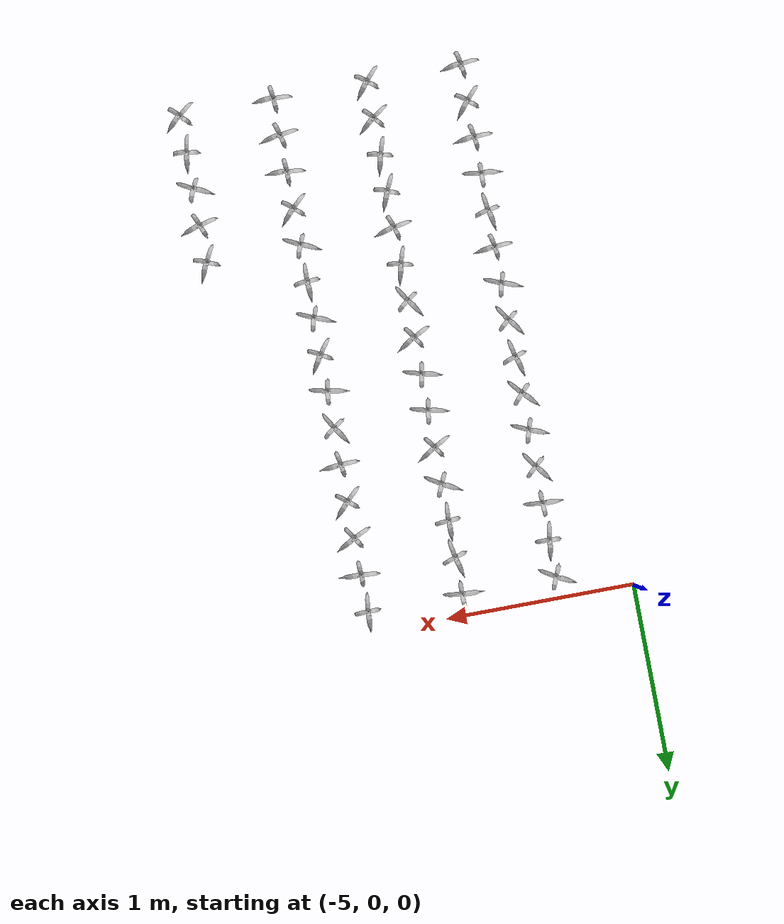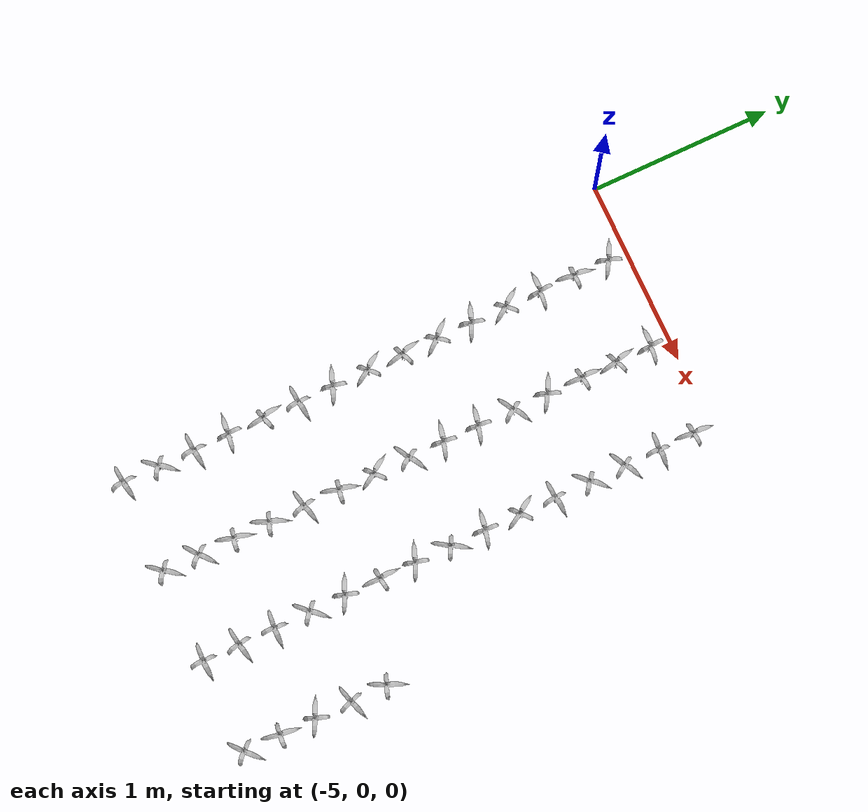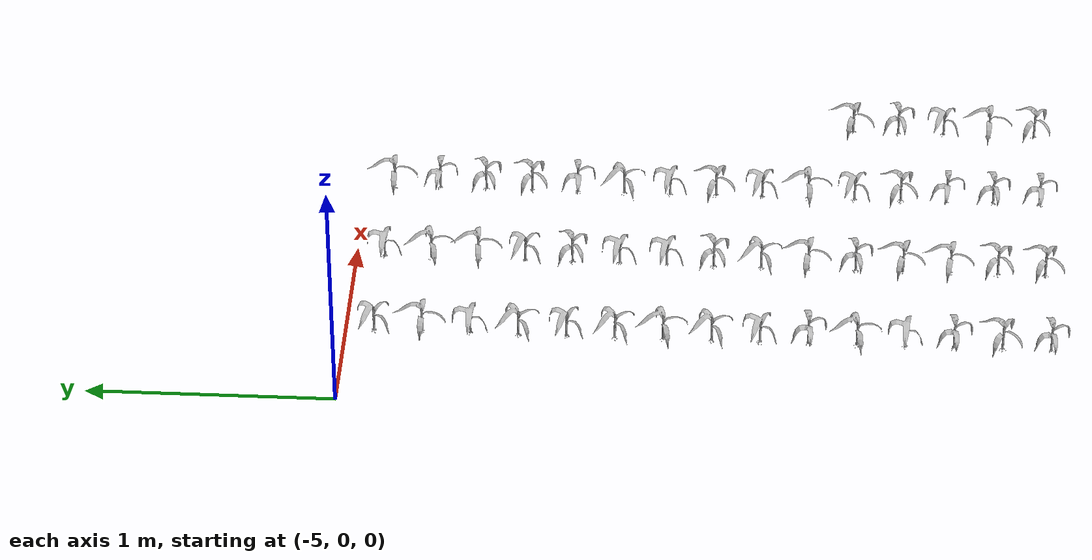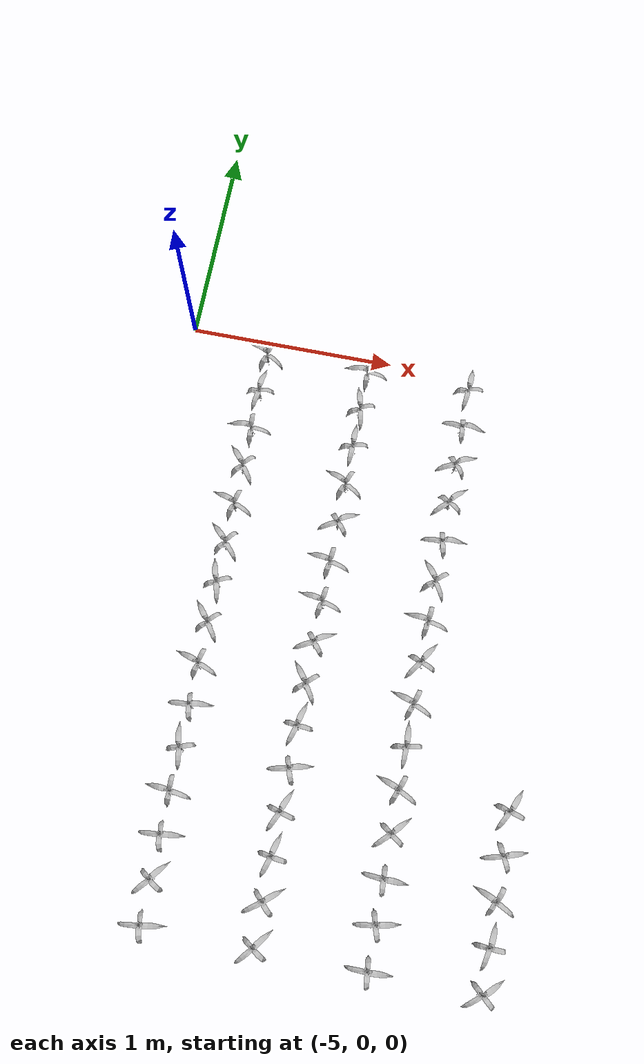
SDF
<sdf version="1.7">
 <world name="default">
  <model name="maize_-4.6_-2.8499999999999996">
   <static>1</static>
   <link name="link">
    <inertial>
     <mass>0.2</mass>
     <inertia>
      <ixx>0.166667</ixx>
      <ixy>0</ixy>
      <ixz>0</ixz>
      <iyy>0.166667</iyy>
      <iyz>0</iyz>
      <izz>0.166667</izz>
     </inertia>
    </inertial>
    <collision name="collision">
     <geometry><mesh><uri>model://corn_3/meshes/corn.dae</uri><scale>0.25 0.25 0.25</scale></mesh></geometry>
     <surface>
      <friction><ode><mu>0</mu><mu2>0</mu2></ode></friction>
      <contact><ode><kp>0</kp><kd>0</kd><max_vel>0</max_vel><min_depth>0.002</min_depth></ode></contact>
     </surface>
    </collision>
    <visual name="visual">
     <geometry><mesh><uri>model://corn_3/meshes/corn.dae</uri><scale>0.25 0.25 0.25</scale></mesh></geometry>
    </visual>
    <velocity_decay><linear>0</linear><angular>0</angular></velocity_decay>
   </link>
   <pose>-4.6 -2.85 0.05 0 -0 0.193534</pose>
  </model>
  <model name="maize_-4.6_-2.655">
   <static>1</static>
   <link name="link">
    <inertial>
     <mass>0.2</mass>
     <inertia>
      <ixx>0.166667</ixx>
      <ixy>0</ixy>
      <ixz>0</ixz>
      <iyy>0.166667</iyy>
      <iyz>0</iyz>
      <izz>0.166667</izz>
     </inertia>
    </inertial>
    <collision name="collision">
     <geometry><mesh><uri>model://corn_3/meshes/corn.dae</uri><scale>0.25 0.25 0.25</scale></mesh></geometry>
     <surface>
      <friction><ode><mu>0</mu><mu2>0</mu2></ode></friction>
      <contact><ode><kp>0</kp><kd>0</kd><max_vel>0</max_vel><min_depth>0.002</min_depth></ode></contact>
     </surface>
    </collision>
    <visual name="visual">
     <geometry><mesh><uri>model://corn_3/meshes/corn.dae</uri><scale>0.25 0.25 0.25</scale></mesh></geometry>
    </visual>
    <velocity_decay><linear>0</linear><angular>0</angular></velocity_decay>
   </link>
   <pose>-4.6 -2.655 0.05 0 -0 0.942737</pose>
  </model>
  <model name="maize_-4.6_-2.46">
   <static>1</static>
   <link name="link">
    <inertial>
     <mass>0.2</mass>
     <inertia>
      <ixx>0.166667</ixx>
      <ixy>0</ixy>
      <ixz>0</ixz>
      <iyy>0.166667</iyy>
      <iyz>0</iyz>
      <izz>0.166667</izz>
     </inertia>
    </inertial>
    <collision name="collision">
     <geometry><mesh><uri>model://corn_3/meshes/corn.dae</uri><scale>0.25 0.25 0.25</scale></mesh></geometry>
     <surface>
      <friction><ode><mu>0</mu><mu2>0</mu2></ode></friction>
      <contact><ode><kp>0</kp><kd>0</kd><max_vel>0</max_vel><min_depth>0.002</min_depth></ode></contact>
     </surface>
    </collision>
    <visual name="visual">
     <geometry><mesh><uri>model://corn_3/meshes/corn.dae</uri><scale>0.25 0.25 0.25</scale></mesh></geometry>
    </visual>
    <velocity_decay><linear>0</linear><angular>0</angular></velocity_decay>
   </link>
   <pose>-4.6 -2.46 0.05 0 -0 0.155841</pose>
  </model>
  <model name="maize_-4.6_-2.2649999999999997">
   <static>1</static>
   <link name="link">
    <inertial>
     <mass>0.2</mass>
     <inertia>
      <ixx>0.166667</ixx>
      <ixy>0</ixy>
      <ixz>0</ixz>
      <iyy>0.166667</iyy>
      <iyz>0</iyz>
      <izz>0.166667</izz>
     </inertia>
    </inertial>
    <collision name="collision">
     <geometry><mesh><uri>model://corn_3/meshes/corn.dae</uri><scale>0.25 0.25 0.25</scale></mesh></geometry>
     <surface>
      <friction><ode><mu>0</mu><mu2>0</mu2></ode></friction>
      <contact><ode><kp>0</kp><kd>0</kd><max_vel>0</max_vel><min_depth>0.002</min_depth></ode></contact>
     </surface>
    </collision>
    <visual name="visual">
     <geometry><mesh><uri>model://corn_3/meshes/corn.dae</uri><scale>0.25 0.25 0.25</scale></mesh></geometry>
    </visual>
    <velocity_decay><linear>0</linear><angular>0</angular></velocity_decay>
   </link>
   <pose>-4.6 -2.265 0.05 0 -0 3.0832</pose>
  </model>
  <model name="maize_-4.6_-2.07">
   <static>1</static>
   <link name="link">
    <inertial>
     <mass>0.2</mass>
     <inertia>
      <ixx>0.166667</ixx>
      <ixy>0</ixy>
      <ixz>0</ixz>
      <iyy>0.166667</iyy>
      <iyz>0</iyz>
      <izz>0.166667</izz>
     </inertia>
    </inertial>
    <collision name="collision">
     <geometry><mesh><uri>model://corn_3/meshes/corn.dae</uri><scale>0.25 0.25 0.25</scale></mesh></geometry>
     <surface>
      <friction><ode><mu>0</mu><mu2>0</mu2></ode></friction>
      <contact><ode><kp>0</kp><kd>0</kd><max_vel>0</max_vel><min_depth>0.002</min_depth></ode></contact>
     </surface>
    </collision>
    <visual name="visual">
     <geometry><mesh><uri>model://corn_3/meshes/corn.dae</uri><scale>0.25 0.25 0.25</scale></mesh></geometry>
    </visual>
    <velocity_decay><linear>0</linear><angular>0</angular></velocity_decay>
   </link>
   <pose>-4.6 -2.07 0.05 0 -0 1.80875</pose>
  </model>
  <model name="maize_-4.6_-1.8749999999999996">
   <static>1</static>
   <link name="link">
    <inertial>
     <mass>0.2</mass>
     <inertia>
      <ixx>0.166667</ixx>
      <ixy>0</ixy>
      <ixz>0</ixz>
      <iyy>0.166667</iyy>
      <iyz>0</iyz>
      <izz>0.166667</izz>
     </inertia>
    </inertial>
    <collision name="collision">
     <geometry><mesh><uri>model://corn_3/meshes/corn.dae</uri><scale>0.25 0.25 0.25</scale></mesh></geometry>
     <surface>
      <friction><ode><mu>0</mu><mu2>0</mu2></ode></friction>
      <contact><ode><kp>0</kp><kd>0</kd><max_vel>0</max_vel><min_depth>0.002</min_depth></ode></contact>
     </surface>
    </collision>
    <visual name="visual">
     <geometry><mesh><uri>model://corn_3/meshes/corn.dae</uri><scale>0.25 0.25 0.25</scale></mesh></geometry>
    </visual>
    <velocity_decay><linear>0</linear><angular>0</angular></velocity_decay>
   </link>
   <pose>-4.6 -1.875 0.05 0 -0 0.168491</pose>
  </model>
  <model name="maize_-4.6_-1.6799999999999997">
   <static>1</static>
   <link name="link">
    <inertial>
     <mass>0.2</mass>
     <inertia>
      <ixx>0.166667</ixx>
      <ixy>0</ixy>
      <ixz>0</ixz>
      <iyy>0.166667</iyy>
      <iyz>0</iyz>
      <izz>0.166667</izz>
     </inertia>
    </inertial>
    <collision name="collision">
     <geometry><mesh><uri>model://corn_3/meshes/corn.dae</uri><scale>0.25 0.25 0.25</scale></mesh></geometry>
     <surface>
      <friction><ode><mu>0</mu><mu2>0</mu2></ode></friction>
      <contact><ode><kp>0</kp><kd>0</kd><max_vel>0</max_vel><min_depth>0.002</min_depth></ode></contact>
     </surface>
    </collision>
    <visual name="visual">
     <geometry><mesh><uri>model://corn_3/meshes/corn.dae</uri><scale>0.25 0.25 0.25</scale></mesh></geometry>
    </visual>
    <velocity_decay><linear>0</linear><angular>0</angular></velocity_decay>
   </link>
   <pose>-4.6 -1.68 0.05 0 -0 2.83995</pose>
  </model>
  <model name="maize_-4.6_-1.4849999999999999">
   <static>1</static>
   <link name="link">
    <inertial>
     <mass>0.2</mass>
     <inertia>
      <ixx>0.166667</ixx>
      <ixy>0</ixy>
      <ixz>0</ixz>
      <iyy>0.166667</iyy>
      <iyz>0</iyz>
      <izz>0.166667</izz>
     </inertia>
    </inertial>
    <collision name="collision">
     <geometry><mesh><uri>model://corn_3/meshes/corn.dae</uri><scale>0.25 0.25 0.25</scale></mesh></geometry>
     <surface>
      <friction><ode><mu>0</mu><mu2>0</mu2></ode></friction>
      <contact><ode><kp>0</kp><kd>0</kd><max_vel>0</max_vel><min_depth>0.002</min_depth></ode></contact>
     </surface>
    </collision>
    <visual name="visual">
     <geometry><mesh><uri>model://corn_3/meshes/corn.dae</uri><scale>0.25 0.25 0.25</scale></mesh></geometry>
    </visual>
    <velocity_decay><linear>0</linear><angular>0</angular></velocity_decay>
   </link>
   <pose>-4.6 -1.485 0.05 0 -0 2.24824</pose>
  </model>
  <model name="maize_-4.6_-1.2899999999999996">
   <static>1</static>
   <link name="link">
    <inertial>
     <mass>0.2</mass>
     <inertia>
      <ixx>0.166667</ixx>
      <ixy>0</ixy>
      <ixz>0</ixz>
      <iyy>0.166667</iyy>
      <iyz>0</iyz>
      <izz>0.166667</izz>
     </inertia>
    </inertial>
    <collision name="collision">
     <geometry><mesh><uri>model://corn_3/meshes/corn.dae</uri><scale>0.25 0.25 0.25</scale></mesh></geometry>
     <surface>
      <friction><ode><mu>0</mu><mu2>0</mu2></ode></friction>
      <contact><ode><kp>0</kp><kd>0</kd><max_vel>0</max_vel><min_depth>0.002</min_depth></ode></contact>
     </surface>
    </collision>
    <visual name="visual">
     <geometry><mesh><uri>model://corn_3/meshes/corn.dae</uri><scale>0.25 0.25 0.25</scale></mesh></geometry>
    </visual>
    <velocity_decay><linear>0</linear><angular>0</angular></velocity_decay>
   </link>
   <pose>-4.6 -1.29 0.05 0 -0 1.88643</pose>
  </model>
  <model name="maize_-4.6_-1.0949999999999998">
   <static>1</static>
   <link name="link">
    <inertial>
     <mass>0.2</mass>
     <inertia>
      <ixx>0.166667</ixx>
      <ixy>0</ixy>
      <ixz>0</ixz>
      <iyy>0.166667</iyy>
      <iyz>0</iyz>
      <izz>0.166667</izz>
     </inertia>
    </inertial>
    <collision name="collision">
     <geometry><mesh><uri>model://corn_3/meshes/corn.dae</uri><scale>0.25 0.25 0.25</scale></mesh></geometry>
     <surface>
      <friction><ode><mu>0</mu><mu2>0</mu2></ode></friction>
      <contact><ode><kp>0</kp><kd>0</kd><max_vel>0</max_vel><min_depth>0.002</min_depth></ode></contact>
     </surface>
    </collision>
    <visual name="visual">
     <geometry><mesh><uri>model://corn_3/meshes/corn.dae</uri><scale>0.25 0.25 0.25</scale></mesh></geometry>
    </visual>
    <velocity_decay><linear>0</linear><angular>0</angular></velocity_decay>
   </link>
   <pose>-4.6 -1.095 0.05 0 -0 2.37285</pose>
  </model>
  <model name="maize_-4.6_-0.8999999999999995">
   <static>1</static>
   <link name="link">
    <inertial>
     <mass>0.2</mass>
     <inertia>
      <ixx>0.166667</ixx>
      <ixy>0</ixy>
      <ixz>0</ixz>
      <iyy>0.166667</iyy>
      <iyz>0</iyz>
      <izz>0.166667</izz>
     </inertia>
    </inertial>
    <collision name="collision">
     <geometry><mesh><uri>model://corn_3/meshes/corn.dae</uri><scale>0.25 0.25 0.25</scale></mesh></geometry>
     <surface>
      <friction><ode><mu>0</mu><mu2>0</mu2></ode></friction>
      <contact><ode><kp>0</kp><kd>0</kd><max_vel>0</max_vel><min_depth>0.002</min_depth></ode></contact>
     </surface>
    </collision>
    <visual name="visual">
     <geometry><mesh><uri>model://corn_3/meshes/corn.dae</uri><scale>0.25 0.25 0.25</scale></mesh></geometry>
    </visual>
    <velocity_decay><linear>0</linear><angular>0</angular></velocity_decay>
   </link>
   <pose>-4.6 -0.9 0.05 0 -0 2.8089</pose>
  </model>
  <model name="maize_-4.6_-0.7050000000000001">
   <static>1</static>
   <link name="link">
    <inertial>
     <mass>0.2</mass>
     <inertia>
      <ixx>0.166667</ixx>
      <ixy>0</ixy>
      <ixz>0</ixz>
      <iyy>0.166667</iyy>
      <iyz>0</iyz>
      <izz>0.166667</izz>
     </inertia>
    </inertial>
    <collision name="collision">
     <geometry><mesh><uri>model://corn_3/meshes/corn.dae</uri><scale>0.25 0.25 0.25</scale></mesh></geometry>
     <surface>
      <friction><ode><mu>0</mu><mu2>0</mu2></ode></friction>
      <contact><ode><kp>0</kp><kd>0</kd><max_vel>0</max_vel><min_depth>0.002</min_depth></ode></contact>
     </surface>
    </collision>
    <visual name="visual">
     <geometry><mesh><uri>model://corn_3/meshes/corn.dae</uri><scale>0.25 0.25 0.25</scale></mesh></geometry>
    </visual>
    <velocity_decay><linear>0</linear><angular>0</angular></velocity_decay>
   </link>
   <pose>-4.6 -0.705 0.05 0 -0 2.27748</pose>
  </model>
  <model name="maize_-4.6_-0.5099999999999998">
   <static>1</static>
   <link name="link">
    <inertial>
     <mass>0.2</mass>
     <inertia>
      <ixx>0.166667</ixx>
      <ixy>0</ixy>
      <ixz>0</ixz>
      <iyy>0.166667</iyy>
      <iyz>0</iyz>
      <izz>0.166667</izz>
     </inertia>
    </inertial>
    <collision name="collision">
     <geometry><mesh><uri>model://corn_3/meshes/corn.dae</uri><scale>0.25 0.25 0.25</scale></mesh></geometry>
     <surface>
      <friction><ode><mu>0</mu><mu2>0</mu2></ode></friction>
      <contact><ode><kp>0</kp><kd>0</kd><max_vel>0</max_vel><min_depth>0.002</min_depth></ode></contact>
     </surface>
    </collision>
    <visual name="visual">
     <geometry><mesh><uri>model://corn_3/meshes/corn.dae</uri><scale>0.25 0.25 0.25</scale></mesh></geometry>
    </visual>
    <velocity_decay><linear>0</linear><angular>0</angular></velocity_decay>
   </link>
   <pose>-4.6 -0.51 0.05 0 -0 3.13945</pose>
  </model>
  <model name="maize_-4.6_-0.3149999999999995">
   <static>1</static>
   <link name="link">
    <inertial>
     <mass>0.2</mass>
     <inertia>
      <ixx>0.166667</ixx>
      <ixy>0</ixy>
      <ixz>0</ixz>
      <iyy>0.166667</iyy>
      <iyz>0</iyz>
      <izz>0.166667</izz>
     </inertia>
    </inertial>
    <collision name="collision">
     <geometry><mesh><uri>model://corn_3/meshes/corn.dae</uri><scale>0.25 0.25 0.25</scale></mesh></geometry>
     <surface>
      <friction><ode><mu>0</mu><mu2>0</mu2></ode></friction>
      <contact><ode><kp>0</kp><kd>0</kd><max_vel>0</max_vel><min_depth>0.002</min_depth></ode></contact>
     </surface>
    </collision>
    <visual name="visual">
     <geometry><mesh><uri>model://corn_3/meshes/corn.dae</uri><scale>0.25 0.25 0.25</scale></mesh></geometry>
    </visual>
    <velocity_decay><linear>0</linear><angular>0</angular></velocity_decay>
   </link>
   <pose>-4.6 -0.315 0.05 0 -0 1.49172</pose>
  </model>
  <model name="maize_-4.6_-0.1200000000000001">
   <static>1</static>
   <link name="link">
    <inertial>
     <mass>0.2</mass>
     <inertia>
      <ixx>0.166667</ixx>
      <ixy>0</ixy>
      <ixz>0</ixz>
      <iyy>0.166667</iyy>
      <iyz>0</iyz>
      <izz>0.166667</izz>
     </inertia>
    </inertial>
    <collision name="collision">
     <geometry><mesh><uri>model://corn_3/meshes/corn.dae</uri><scale>0.25 0.25 0.25</scale></mesh></geometry>
     <surface>
      <friction><ode><mu>0</mu><mu2>0</mu2></ode></friction>
      <contact><ode><kp>0</kp><kd>0</kd><max_vel>0</max_vel><min_depth>0.002</min_depth></ode></contact>
     </surface>
    </collision>
    <visual name="visual">
     <geometry><mesh><uri>model://corn_3/meshes/corn.dae</uri><scale>0.25 0.25 0.25</scale></mesh></geometry>
    </visual>
    <velocity_decay><linear>0</linear><angular>0</angular></velocity_decay>
   </link>
   <pose>-4.6 -0.12 0.05 0 -0 2.70126</pose>
  </model>
  <model name="maize_-4.100375_-2.8499999999999996">
   <static>1</static>
   <link name="link">
    <inertial>
     <mass>0.2</mass>
     <inertia>
      <ixx>0.166667</ixx>
      <ixy>0</ixy>
      <ixz>0</ixz>
      <iyy>0.166667</iyy>
      <iyz>0</iyz>
      <izz>0.166667</izz>
     </inertia>
    </inertial>
    <collision name="collision">
     <geometry><mesh><uri>model://corn_3/meshes/corn.dae</uri><scale>0.25 0.25 0.25</scale></mesh></geometry>
     <surface>
      <friction><ode><mu>0</mu><mu2>0</mu2></ode></friction>
      <contact><ode><kp>0</kp><kd>0</kd><max_vel>0</max_vel><min_depth>0.002</min_depth></ode></contact>
     </surface>
    </collision>
    <visual name="visual">
     <geometry><mesh><uri>model://corn_3/meshes/corn.dae</uri><scale>0.25 0.25 0.25</scale></mesh></geometry>
    </visual>
    <velocity_decay><linear>0</linear><angular>0</angular></velocity_decay>
   </link>
   <pose>-4.10037 -2.85 0.05 0 -0 0.954288</pose>
  </model>
  <model name="maize_-4.100375_-2.655">
   <static>1</static>
   <link name="link">
    <inertial>
     <mass>0.2</mass>
     <inertia>
      <ixx>0.166667</ixx>
      <ixy>0</ixy>
      <ixz>0</ixz>
      <iyy>0.166667</iyy>
      <iyz>0</iyz>
      <izz>0.166667</izz>
     </inertia>
    </inertial>
    <collision name="collision">
     <geometry><mesh><uri>model://corn_3/meshes/corn.dae</uri><scale>0.25 0.25 0.25</scale></mesh></geometry>
     <surface>
      <friction><ode><mu>0</mu><mu2>0</mu2></ode></friction>
      <contact><ode><kp>0</kp><kd>0</kd><max_vel>0</max_vel><min_depth>0.002</min_depth></ode></contact>
     </surface>
    </collision>
    <visual name="visual">
     <geometry><mesh><uri>model://corn_3/meshes/corn.dae</uri><scale>0.25 0.25 0.25</scale></mesh></geometry>
    </visual>
    <velocity_decay><linear>0</linear><angular>0</angular></velocity_decay>
   </link>
   <pose>-4.10037 -2.655 0.05 0 -0 0.736353</pose>
  </model>
  <model name="maize_-4.100375_-2.46">
   <static>1</static>
   <link name="link">
    <inertial>
     <mass>0.2</mass>
     <inertia>
      <ixx>0.166667</ixx>
      <ixy>0</ixy>
      <ixz>0</ixz>
      <iyy>0.166667</iyy>
      <iyz>0</iyz>
      <izz>0.166667</izz>
     </inertia>
    </inertial>
    <collision name="collision">
     <geometry><mesh><uri>model://corn_3/meshes/corn.dae</uri><scale>0.25 0.25 0.25</scale></mesh></geometry>
     <surface>
      <friction><ode><mu>0</mu><mu2>0</mu2></ode></friction>
      <contact><ode><kp>0</kp><kd>0</kd><max_vel>0</max_vel><min_depth>0.002</min_depth></ode></contact>
     </surface>
    </collision>
    <visual name="visual">
     <geometry><mesh><uri>model://corn_3/meshes/corn.dae</uri><scale>0.25 0.25 0.25</scale></mesh></geometry>
    </visual>
    <velocity_decay><linear>0</linear><angular>0</angular></velocity_decay>
   </link>
   <pose>-4.10037 -2.46 0.05 0 -0 1.36753</pose>
  </model>
  <model name="maize_-4.100375_-2.2649999999999997">
   <static>1</static>
   <link name="link">
    <inertial>
     <mass>0.2</mass>
     <inertia>
      <ixx>0.166667</ixx>
      <ixy>0</ixy>
      <ixz>0</ixz>
      <iyy>0.166667</iyy>
      <iyz>0</iyz>
      <izz>0.166667</izz>
     </inertia>
    </inertial>
    <collision name="collision">
     <geometry><mesh><uri>model://corn_3/meshes/corn.dae</uri><scale>0.25 0.25 0.25</scale></mesh></geometry>
     <surface>
      <friction><ode><mu>0</mu><mu2>0</mu2></ode></friction>
      <contact><ode><kp>0</kp><kd>0</kd><max_vel>0</max_vel><min_depth>0.002</min_depth></ode></contact>
     </surface>
    </collision>
    <visual name="visual">
     <geometry><mesh><uri>model://corn_3/meshes/corn.dae</uri><scale>0.25 0.25 0.25</scale></mesh></geometry>
    </visual>
    <velocity_decay><linear>0</linear><angular>0</angular></velocity_decay>
   </link>
   <pose>-4.10037 -2.265 0.05 0 -0 1.23941</pose>
  </model>
  <model name="maize_-4.100375_-2.07">
   <static>1</static>
   <link name="link">
    <inertial>
     <mass>0.2</mass>
     <inertia>
      <ixx>0.166667</ixx>
      <ixy>0</ixy>
      <ixz>0</ixz>
      <iyy>0.166667</iyy>
      <iyz>0</iyz>
      <izz>0.166667</izz>
     </inertia>
    </inertial>
    <collision name="collision">
     <geometry><mesh><uri>model://corn_3/meshes/corn.dae</uri><scale>0.25 0.25 0.25</scale></mesh></geometry>
     <surface>
      <friction><ode><mu>0</mu><mu2>0</mu2></ode></friction>
      <contact><ode><kp>0</kp><kd>0</kd><max_vel>0</max_vel><min_depth>0.002</min_depth></ode></contact>
     </surface>
    </collision>
    <visual name="visual">
     <geometry><mesh><uri>model://corn_3/meshes/corn.dae</uri><scale>0.25 0.25 0.25</scale></mesh></geometry>
    </visual>
    <velocity_decay><linear>0</linear><angular>0</angular></velocity_decay>
   </link>
   <pose>-4.10037 -2.07 0.05 0 -0 0.298364</pose>
  </model>
  <model name="maize_-4.100375_-1.8749999999999996">
   <static>1</static>
   <link name="link">
    <inertial>
     <mass>0.2</mass>
     <inertia>
      <ixx>0.166667</ixx>
      <ixy>0</ixy>
      <ixz>0</ixz>
      <iyy>0.166667</iyy>
      <iyz>0</iyz>
      <izz>0.166667</izz>
     </inertia>
    </inertial>
    <collision name="collision">
     <geometry><mesh><uri>model://corn_3/meshes/corn.dae</uri><scale>0.25 0.25 0.25</scale></mesh></geometry>
     <surface>
      <friction><ode><mu>0</mu><mu2>0</mu2></ode></friction>
      <contact><ode><kp>0</kp><kd>0</kd><max_vel>0</max_vel><min_depth>0.002</min_depth></ode></contact>
     </surface>
    </collision>
    <visual name="visual">
     <geometry><mesh><uri>model://corn_3/meshes/corn.dae</uri><scale>0.25 0.25 0.25</scale></mesh></geometry>
    </visual>
    <velocity_decay><linear>0</linear><angular>0</angular></velocity_decay>
   </link>
   <pose>-4.10037 -1.875 0.05 0 -0 1.37113</pose>
  </model>
  <model name="maize_-4.100375_-1.6799999999999997">
   <static>1</static>
   <link name="link">
    <inertial>
     <mass>0.2</mass>
     <inertia>
      <ixx>0.166667</ixx>
      <ixy>0</ixy>
      <ixz>0</ixz>
      <iyy>0.166667</iyy>
      <iyz>0</iyz>
      <izz>0.166667</izz>
     </inertia>
    </inertial>
    <collision name="collision">
     <geometry><mesh><uri>model://corn_3/meshes/corn.dae</uri><scale>0.25 0.25 0.25</scale></mesh></geometry>
     <surface>
      <friction><ode><mu>0</mu><mu2>0</mu2></ode></friction>
      <contact><ode><kp>0</kp><kd>0</kd><max_vel>0</max_vel><min_depth>0.002</min_depth></ode></contact>
     </surface>
    </collision>
    <visual name="visual">
     <geometry><mesh><uri>model://corn_3/meshes/corn.dae</uri><scale>0.25 0.25 0.25</scale></mesh></geometry>
    </visual>
    <velocity_decay><linear>0</linear><angular>0</angular></velocity_decay>
   </link>
   <pose>-4.10037 -1.68 0.05 0 -0 2.2196</pose>
  </model>
  <model name="maize_-4.100375_-1.4849999999999999">
   <static>1</static>
   <link name="link">
    <inertial>
     <mass>0.2</mass>
     <inertia>
      <ixx>0.166667</ixx>
      <ixy>0</ixy>
      <ixz>0</ixz>
      <iyy>0.166667</iyy>
      <iyz>0</iyz>
      <izz>0.166667</izz>
     </inertia>
    </inertial>
    <collision name="collision">
     <geometry><mesh><uri>model://corn_3/meshes/corn.dae</uri><scale>0.25 0.25 0.25</scale></mesh></geometry>
     <surface>
      <friction><ode><mu>0</mu><mu2>0</mu2></ode></friction>
      <contact><ode><kp>0</kp><kd>0</kd><max_vel>0</max_vel><min_depth>0.002</min_depth></ode></contact>
     </surface>
    </collision>
    <visual name="visual">
     <geometry><mesh><uri>model://corn_3/meshes/corn.dae</uri><scale>0.25 0.25 0.25</scale></mesh></geometry>
    </visual>
    <velocity_decay><linear>0</linear><angular>0</angular></velocity_decay>
   </link>
   <pose>-4.10037 -1.485 0.05 0 -0 0.584728</pose>
  </model>
  <model name="maize_-4.100375_-1.2899999999999996">
   <static>1</static>
   <link name="link">
    <inertial>
     <mass>0.2</mass>
     <inertia>
      <ixx>0.166667</ixx>
      <ixy>0</ixy>
      <ixz>0</ixz>
      <iyy>0.166667</iyy>
      <iyz>0</iyz>
      <izz>0.166667</izz>
     </inertia>
    </inertial>
    <collision name="collision">
     <geometry><mesh><uri>model://corn_3/meshes/corn.dae</uri><scale>0.25 0.25 0.25</scale></mesh></geometry>
     <surface>
      <friction><ode><mu>0</mu><mu2>0</mu2></ode></friction>
      <contact><ode><kp>0</kp><kd>0</kd><max_vel>0</max_vel><min_depth>0.002</min_depth></ode></contact>
     </surface>
    </collision>
    <visual name="visual">
     <geometry><mesh><uri>model://corn_3/meshes/corn.dae</uri><scale>0.25 0.25 0.25</scale></mesh></geometry>
    </visual>
    <velocity_decay><linear>0</linear><angular>0</angular></velocity_decay>
   </link>
   <pose>-4.10037 -1.29 0.05 0 -0 2.942</pose>
  </model>
  <model name="maize_-4.100375_-1.0949999999999998">
   <static>1</static>
   <link name="link">
    <inertial>
     <mass>0.2</mass>
     <inertia>
      <ixx>0.166667</ixx>
      <ixy>0</ixy>
      <ixz>0</ixz>
      <iyy>0.166667</iyy>
      <iyz>0</iyz>
      <izz>0.166667</izz>
     </inertia>
    </inertial>
    <collision name="collision">
     <geometry><mesh><uri>model://corn_3/meshes/corn.dae</uri><scale>0.25 0.25 0.25</scale></mesh></geometry>
     <surface>
      <friction><ode><mu>0</mu><mu2>0</mu2></ode></friction>
      <contact><ode><kp>0</kp><kd>0</kd><max_vel>0</max_vel><min_depth>0.002</min_depth></ode></contact>
     </surface>
    </collision>
    <visual name="visual">
     <geometry><mesh><uri>model://corn_3/meshes/corn.dae</uri><scale>0.25 0.25 0.25</scale></mesh></geometry>
    </visual>
    <velocity_decay><linear>0</linear><angular>0</angular></velocity_decay>
   </link>
   <pose>-4.10037 -1.095 0.05 0 -0 2.96607</pose>
  </model>
  <model name="maize_-4.100375_-0.8999999999999995">
   <static>1</static>
   <link name="link">
    <inertial>
     <mass>0.2</mass>
     <inertia>
      <ixx>0.166667</ixx>
      <ixy>0</ixy>
      <ixz>0</ixz>
      <iyy>0.166667</iyy>
      <iyz>0</iyz>
      <izz>0.166667</izz>
     </inertia>
    </inertial>
    <collision name="collision">
     <geometry><mesh><uri>model://corn_3/meshes/corn.dae</uri><scale>0.25 0.25 0.25</scale></mesh></geometry>
     <surface>
      <friction><ode><mu>0</mu><mu2>0</mu2></ode></friction>
      <contact><ode><kp>0</kp><kd>0</kd><max_vel>0</max_vel><min_depth>0.002</min_depth></ode></contact>
     </surface>
    </collision>
    <visual name="visual">
     <geometry><mesh><uri>model://corn_3/meshes/corn.dae</uri><scale>0.25 0.25 0.25</scale></mesh></geometry>
    </visual>
    <velocity_decay><linear>0</linear><angular>0</angular></velocity_decay>
   </link>
   <pose>-4.10037 -0.9 0.05 0 -0 0.598537</pose>
  </model>
  <model name="maize_-4.100375_-0.7050000000000001">
   <static>1</static>
   <link name="link">
    <inertial>
     <mass>0.2</mass>
     <inertia>
      <ixx>0.166667</ixx>
      <ixy>0</ixy>
      <ixz>0</ixz>
      <iyy>0.166667</iyy>
      <iyz>0</iyz>
      <izz>0.166667</izz>
     </inertia>
    </inertial>
    <collision name="collision">
     <geometry><mesh><uri>model://corn_3/meshes/corn.dae</uri><scale>0.25 0.25 0.25</scale></mesh></geometry>
     <surface>
      <friction><ode><mu>0</mu><mu2>0</mu2></ode></friction>
      <contact><ode><kp>0</kp><kd>0</kd><max_vel>0</max_vel><min_depth>0.002</min_depth></ode></contact>
     </surface>
    </collision>
    <visual name="visual">
     <geometry><mesh><uri>model://corn_3/meshes/corn.dae</uri><scale>0.25 0.25 0.25</scale></mesh></geometry>
    </visual>
    <velocity_decay><linear>0</linear><angular>0</angular></velocity_decay>
   </link>
   <pose>-4.10037 -0.705 0.05 0 -0 2.6946</pose>
  </model>
  <model name="maize_-4.100375_-0.5099999999999998">
   <static>1</static>
   <link name="link">
    <inertial>
     <mass>0.2</mass>
     <inertia>
      <ixx>0.166667</ixx>
      <ixy>0</ixy>
      <ixz>0</ixz>
      <iyy>0.166667</iyy>
      <iyz>0</iyz>
      <izz>0.166667</izz>
     </inertia>
    </inertial>
    <collision name="collision">
     <geometry><mesh><uri>model://corn_3/meshes/corn.dae</uri><scale>0.25 0.25 0.25</scale></mesh></geometry>
     <surface>
      <friction><ode><mu>0</mu><mu2>0</mu2></ode></friction>
      <contact><ode><kp>0</kp><kd>0</kd><max_vel>0</max_vel><min_depth>0.002</min_depth></ode></contact>
     </surface>
    </collision>
    <visual name="visual">
     <geometry><mesh><uri>model://corn_3/meshes/corn.dae</uri><scale>0.25 0.25 0.25</scale></mesh></geometry>
    </visual>
    <velocity_decay><linear>0</linear><angular>0</angular></velocity_decay>
   </link>
   <pose>-4.10037 -0.51 0.05 0 -0 1.61655</pose>
  </model>
  <model name="maize_-4.100375_-0.3149999999999995">
   <static>1</static>
   <link name="link">
    <inertial>
     <mass>0.2</mass>
     <inertia>
      <ixx>0.166667</ixx>
      <ixy>0</ixy>
      <ixz>0</ixz>
      <iyy>0.166667</iyy>
      <iyz>0</iyz>
      <izz>0.166667</izz>
     </inertia>
    </inertial>
    <collision name="collision">
     <geometry><mesh><uri>model://corn_3/meshes/corn.dae</uri><scale>0.25 0.25 0.25</scale></mesh></geometry>
     <surface>
      <friction><ode><mu>0</mu><mu2>0</mu2></ode></friction>
      <contact><ode><kp>0</kp><kd>0</kd><max_vel>0</max_vel><min_depth>0.002</min_depth></ode></contact>
     </surface>
    </collision>
    <visual name="visual">
     <geometry><mesh><uri>model://corn_3/meshes/corn.dae</uri><scale>0.25 0.25 0.25</scale></mesh></geometry>
    </visual>
    <velocity_decay><linear>0</linear><angular>0</angular></velocity_decay>
   </link>
   <pose>-4.10037 -0.315 0.05 0 -0 1.85257</pose>
  </model>
  <model name="maize_-4.100375_-0.1200000000000001">
   <static>1</static>
   <link name="link">
    <inertial>
     <mass>0.2</mass>
     <inertia>
      <ixx>0.166667</ixx>
      <ixy>0</ixy>
      <ixz>0</ixz>
      <iyy>0.166667</iyy>
      <iyz>0</iyz>
      <izz>0.166667</izz>
     </inertia>
    </inertial>
    <collision name="collision">
     <geometry><mesh><uri>model://corn_3/meshes/corn.dae</uri><scale>0.25 0.25 0.25</scale></mesh></geometry>
     <surface>
      <friction><ode><mu>0</mu><mu2>0</mu2></ode></friction>
      <contact><ode><kp>0</kp><kd>0</kd><max_vel>0</max_vel><min_depth>0.002</min_depth></ode></contact>
     </surface>
    </collision>
    <visual name="visual">
     <geometry><mesh><uri>model://corn_3/meshes/corn.dae</uri><scale>0.25 0.25 0.25</scale></mesh></geometry>
    </visual>
    <velocity_decay><linear>0</linear><angular>0</angular></velocity_decay>
   </link>
   <pose>-4.10037 -0.12 0.05 0 -0 3.11664</pose>
  </model>
  <model name="maize_-3.6014994375_-2.8499999999999996">
   <static>1</static>
   <link name="link">
    <inertial>
     <mass>0.2</mass>
     <inertia>
      <ixx>0.166667</ixx>
      <ixy>0</ixy>
      <ixz>0</ixz>
      <iyy>0.166667</iyy>
      <iyz>0</iyz>
      <izz>0.166667</izz>
     </inertia>
    </inertial>
    <collision name="collision">
     <geometry><mesh><uri>model://corn_3/meshes/corn.dae</uri><scale>0.25 0.25 0.25</scale></mesh></geometry>
     <surface>
      <friction><ode><mu>0</mu><mu2>0</mu2></ode></friction>
      <contact><ode><kp>0</kp><kd>0</kd><max_vel>0</max_vel><min_depth>0.002</min_depth></ode></contact>
     </surface>
    </collision>
    <visual name="visual">
     <geometry><mesh><uri>model://corn_3/meshes/corn.dae</uri><scale>0.25 0.25 0.25</scale></mesh></geometry>
    </visual>
    <velocity_decay><linear>0</linear><angular>0</angular></velocity_decay>
   </link>
   <pose>-3.6015 -2.85 0.05 0 -0 0.067168</pose>
  </model>
  <model name="maize_-3.6014994375_-2.655">
   <static>1</static>
   <link name="link">
    <inertial>
     <mass>0.2</mass>
     <inertia>
      <ixx>0.166667</ixx>
      <ixy>0</ixy>
      <ixz>0</ixz>
      <iyy>0.166667</iyy>
      <iyz>0</iyz>
      <izz>0.166667</izz>
     </inertia>
    </inertial>
    <collision name="collision">
     <geometry><mesh><uri>model://corn_3/meshes/corn.dae</uri><scale>0.25 0.25 0.25</scale></mesh></geometry>
     <surface>
      <friction><ode><mu>0</mu><mu2>0</mu2></ode></friction>
      <contact><ode><kp>0</kp><kd>0</kd><max_vel>0</max_vel><min_depth>0.002</min_depth></ode></contact>
     </surface>
    </collision>
    <visual name="visual">
     <geometry><mesh><uri>model://corn_3/meshes/corn.dae</uri><scale>0.25 0.25 0.25</scale></mesh></geometry>
    </visual>
    <velocity_decay><linear>0</linear><angular>0</angular></velocity_decay>
   </link>
   <pose>-3.6015 -2.655 0.05 0 -0 0.243294</pose>
  </model>
  <model name="maize_-3.6014994375_-2.46">
   <static>1</static>
   <link name="link">
    <inertial>
     <mass>0.2</mass>
     <inertia>
      <ixx>0.166667</ixx>
      <ixy>0</ixy>
      <ixz>0</ixz>
      <iyy>0.166667</iyy>
      <iyz>0</iyz>
      <izz>0.166667</izz>
     </inertia>
    </inertial>
    <collision name="collision">
     <geometry><mesh><uri>model://corn_3/meshes/corn.dae</uri><scale>0.25 0.25 0.25</scale></mesh></geometry>
     <surface>
      <friction><ode><mu>0</mu><mu2>0</mu2></ode></friction>
      <contact><ode><kp>0</kp><kd>0</kd><max_vel>0</max_vel><min_depth>0.002</min_depth></ode></contact>
     </surface>
    </collision>
    <visual name="visual">
     <geometry><mesh><uri>model://corn_3/meshes/corn.dae</uri><scale>0.25 0.25 0.25</scale></mesh></geometry>
    </visual>
    <velocity_decay><linear>0</linear><angular>0</angular></velocity_decay>
   </link>
   <pose>-3.6015 -2.46 0.05 0 -0 0.00527</pose>
  </model>
  <model name="maize_-3.6014994375_-2.2649999999999997">
   <static>1</static>
   <link name="link">
    <inertial>
     <mass>0.2</mass>
     <inertia>
      <ixx>0.166667</ixx>
      <ixy>0</ixy>
      <ixz>0</ixz>
      <iyy>0.166667</iyy>
      <iyz>0</iyz>
      <izz>0.166667</izz>
     </inertia>
    </inertial>
    <collision name="collision">
     <geometry><mesh><uri>model://corn_3/meshes/corn.dae</uri><scale>0.25 0.25 0.25</scale></mesh></geometry>
     <surface>
      <friction><ode><mu>0</mu><mu2>0</mu2></ode></friction>
      <contact><ode><kp>0</kp><kd>0</kd><max_vel>0</max_vel><min_depth>0.002</min_depth></ode></contact>
     </surface>
    </collision>
    <visual name="visual">
     <geometry><mesh><uri>model://corn_3/meshes/corn.dae</uri><scale>0.25 0.25 0.25</scale></mesh></geometry>
    </visual>
    <velocity_decay><linear>0</linear><angular>0</angular></velocity_decay>
   </link>
   <pose>-3.6015 -2.265 0.05 0 -0 0.869077</pose>
  </model>
  <model name="maize_-3.6014994375_-2.07">
   <static>1</static>
   <link name="link">
    <inertial>
     <mass>0.2</mass>
     <inertia>
      <ixx>0.166667</ixx>
      <ixy>0</ixy>
      <ixz>0</ixz>
      <iyy>0.166667</iyy>
      <iyz>0</iyz>
      <izz>0.166667</izz>
     </inertia>
    </inertial>
    <collision name="collision">
     <geometry><mesh><uri>model://corn_3/meshes/corn.dae</uri><scale>0.25 0.25 0.25</scale></mesh></geometry>
     <surface>
      <friction><ode><mu>0</mu><mu2>0</mu2></ode></friction>
      <contact><ode><kp>0</kp><kd>0</kd><max_vel>0</max_vel><min_depth>0.002</min_depth></ode></contact>
     </surface>
    </collision>
    <visual name="visual">
     <geometry><mesh><uri>model://corn_3/meshes/corn.dae</uri><scale>0.25 0.25 0.25</scale></mesh></geometry>
    </visual>
    <velocity_decay><linear>0</linear><angular>0</angular></velocity_decay>
   </link>
   <pose>-3.6015 -2.07 0.05 0 -0 2.76595</pose>
  </model>
  <model name="maize_-3.6014994375_-1.8749999999999996">
   <static>1</static>
   <link name="link">
    <inertial>
     <mass>0.2</mass>
     <inertia>
      <ixx>0.166667</ixx>
      <ixy>0</ixy>
      <ixz>0</ixz>
      <iyy>0.166667</iyy>
      <iyz>0</iyz>
      <izz>0.166667</izz>
     </inertia>
    </inertial>
    <collision name="collision">
     <geometry><mesh><uri>model://corn_3/meshes/corn.dae</uri><scale>0.25 0.25 0.25</scale></mesh></geometry>
     <surface>
      <friction><ode><mu>0</mu><mu2>0</mu2></ode></friction>
      <contact><ode><kp>0</kp><kd>0</kd><max_vel>0</max_vel><min_depth>0.002</min_depth></ode></contact>
     </surface>
    </collision>
    <visual name="visual">
     <geometry><mesh><uri>model://corn_3/meshes/corn.dae</uri><scale>0.25 0.25 0.25</scale></mesh></geometry>
    </visual>
    <velocity_decay><linear>0</linear><angular>0</angular></velocity_decay>
   </link>
   <pose>-3.6015 -1.875 0.05 0 -0 1.65698</pose>
  </model>
  <model name="maize_-3.6014994375_-1.6799999999999997">
   <static>1</static>
   <link name="link">
    <inertial>
     <mass>0.2</mass>
     <inertia>
      <ixx>0.166667</ixx>
      <ixy>0</ixy>
      <ixz>0</ixz>
      <iyy>0.166667</iyy>
      <iyz>0</iyz>
      <izz>0.166667</izz>
     </inertia>
    </inertial>
    <collision name="collision">
     <geometry><mesh><uri>model://corn_3/meshes/corn.dae</uri><scale>0.25 0.25 0.25</scale></mesh></geometry>
     <surface>
      <friction><ode><mu>0</mu><mu2>0</mu2></ode></friction>
      <contact><ode><kp>0</kp><kd>0</kd><max_vel>0</max_vel><min_depth>0.002</min_depth></ode></contact>
     </surface>
    </collision>
    <visual name="visual">
     <geometry><mesh><uri>model://corn_3/meshes/corn.dae</uri><scale>0.25 0.25 0.25</scale></mesh></geometry>
    </visual>
    <velocity_decay><linear>0</linear><angular>0</angular></velocity_decay>
   </link>
   <pose>-3.6015 -1.68 0.05 0 -0 2.81225</pose>
  </model>
  <model name="maize_-3.6014994375_-1.4849999999999999">
   <static>1</static>
   <link name="link">
    <inertial>
     <mass>0.2</mass>
     <inertia>
      <ixx>0.166667</ixx>
      <ixy>0</ixy>
      <ixz>0</ixz>
      <iyy>0.166667</iyy>
      <iyz>0</iyz>
      <izz>0.166667</izz>
     </inertia>
    </inertial>
    <collision name="collision">
     <geometry><mesh><uri>model://corn_3/meshes/corn.dae</uri><scale>0.25 0.25 0.25</scale></mesh></geometry>
     <surface>
      <friction><ode><mu>0</mu><mu2>0</mu2></ode></friction>
      <contact><ode><kp>0</kp><kd>0</kd><max_vel>0</max_vel><min_depth>0.002</min_depth></ode></contact>
     </surface>
    </collision>
    <visual name="visual">
     <geometry><mesh><uri>model://corn_3/meshes/corn.dae</uri><scale>0.25 0.25 0.25</scale></mesh></geometry>
    </visual>
    <velocity_decay><linear>0</linear><angular>0</angular></velocity_decay>
   </link>
   <pose>-3.6015 -1.485 0.05 0 -0 1.05705</pose>
  </model>
  <model name="maize_-3.6014994375_-1.2899999999999996">
   <static>1</static>
   <link name="link">
    <inertial>
     <mass>0.2</mass>
     <inertia>
      <ixx>0.166667</ixx>
      <ixy>0</ixy>
      <ixz>0</ixz>
      <iyy>0.166667</iyy>
      <iyz>0</iyz>
      <izz>0.166667</izz>
     </inertia>
    </inertial>
    <collision name="collision">
     <geometry><mesh><uri>model://corn_3/meshes/corn.dae</uri><scale>0.25 0.25 0.25</scale></mesh></geometry>
     <surface>
      <friction><ode><mu>0</mu><mu2>0</mu2></ode></friction>
      <contact><ode><kp>0</kp><kd>0</kd><max_vel>0</max_vel><min_depth>0.002</min_depth></ode></contact>
     </surface>
    </collision>
    <visual name="visual">
     <geometry><mesh><uri>model://corn_3/meshes/corn.dae</uri><scale>0.25 0.25 0.25</scale></mesh></geometry>
    </visual>
    <velocity_decay><linear>0</linear><angular>0</angular></velocity_decay>
   </link>
   <pose>-3.6015 -1.29 0.05 0 -0 3.00001</pose>
  </model>
  <model name="maize_-3.6014994375_-1.0949999999999998">
   <static>1</static>
   <link name="link">
    <inertial>
     <mass>0.2</mass>
     <inertia>
      <ixx>0.166667</ixx>
      <ixy>0</ixy>
      <ixz>0</ixz>
      <iyy>0.166667</iyy>
      <iyz>0</iyz>
      <izz>0.166667</izz>
     </inertia>
    </inertial>
    <collision name="collision">
     <geometry><mesh><uri>model://corn_3/meshes/corn.dae</uri><scale>0.25 0.25 0.25</scale></mesh></geometry>
     <surface>
      <friction><ode><mu>0</mu><mu2>0</mu2></ode></friction>
      <contact><ode><kp>0</kp><kd>0</kd><max_vel>0</max_vel><min_depth>0.002</min_depth></ode></contact>
     </surface>
    </collision>
    <visual name="visual">
     <geometry><mesh><uri>model://corn_3/meshes/corn.dae</uri><scale>0.25 0.25 0.25</scale></mesh></geometry>
    </visual>
    <velocity_decay><linear>0</linear><angular>0</angular></velocity_decay>
   </link>
   <pose>-3.6015 -1.095 0.05 0 -0 2.19715</pose>
  </model>
  <model name="maize_-3.6014994375_-0.8999999999999995">
   <static>1</static>
   <link name="link">
    <inertial>
     <mass>0.2</mass>
     <inertia>
      <ixx>0.166667</ixx>
      <ixy>0</ixy>
      <ixz>0</ixz>
      <iyy>0.166667</iyy>
      <iyz>0</iyz>
      <izz>0.166667</izz>
     </inertia>
    </inertial>
    <collision name="collision">
     <geometry><mesh><uri>model://corn_3/meshes/corn.dae</uri><scale>0.25 0.25 0.25</scale></mesh></geometry>
     <surface>
      <friction><ode><mu>0</mu><mu2>0</mu2></ode></friction>
      <contact><ode><kp>0</kp><kd>0</kd><max_vel>0</max_vel><min_depth>0.002</min_depth></ode></contact>
     </surface>
    </collision>
    <visual name="visual">
     <geometry><mesh><uri>model://corn_3/meshes/corn.dae</uri><scale>0.25 0.25 0.25</scale></mesh></geometry>
    </visual>
    <velocity_decay><linear>0</linear><angular>0</angular></velocity_decay>
   </link>
   <pose>-3.6015 -0.9 0.05 0 -0 0.14063</pose>
  </model>
  <model name="maize_-3.6014994375_-0.7050000000000001">
   <static>1</static>
   <link name="link">
    <inertial>
     <mass>0.2</mass>
     <inertia>
      <ixx>0.166667</ixx>
      <ixy>0</ixy>
      <ixz>0</ixz>
      <iyy>0.166667</iyy>
      <iyz>0</iyz>
      <izz>0.166667</izz>
     </inertia>
    </inertial>
    <collision name="collision">
     <geometry><mesh><uri>model://corn_3/meshes/corn.dae</uri><scale>0.25 0.25 0.25</scale></mesh></geometry>
     <surface>
      <friction><ode><mu>0</mu><mu2>0</mu2></ode></friction>
      <contact><ode><kp>0</kp><kd>0</kd><max_vel>0</max_vel><min_depth>0.002</min_depth></ode></contact>
     </surface>
    </collision>
    <visual name="visual">
     <geometry><mesh><uri>model://corn_3/meshes/corn.dae</uri><scale>0.25 0.25 0.25</scale></mesh></geometry>
    </visual>
    <velocity_decay><linear>0</linear><angular>0</angular></velocity_decay>
   </link>
   <pose>-3.6015 -0.705 0.05 0 -0 0.862792</pose>
  </model>
  <model name="maize_-3.6014994375_-0.5099999999999998">
   <static>1</static>
   <link name="link">
    <inertial>
     <mass>0.2</mass>
     <inertia>
      <ixx>0.166667</ixx>
      <ixy>0</ixy>
      <ixz>0</ixz>
      <iyy>0.166667</iyy>
      <iyz>0</iyz>
      <izz>0.166667</izz>
     </inertia>
    </inertial>
    <collision name="collision">
     <geometry><mesh><uri>model://corn_3/meshes/corn.dae</uri><scale>0.25 0.25 0.25</scale></mesh></geometry>
     <surface>
      <friction><ode><mu>0</mu><mu2>0</mu2></ode></friction>
      <contact><ode><kp>0</kp><kd>0</kd><max_vel>0</max_vel><min_depth>0.002</min_depth></ode></contact>
     </surface>
    </collision>
    <visual name="visual">
     <geometry><mesh><uri>model://corn_3/meshes/corn.dae</uri><scale>0.25 0.25 0.25</scale></mesh></geometry>
    </visual>
    <velocity_decay><linear>0</linear><angular>0</angular></velocity_decay>
   </link>
   <pose>-3.6015 -0.51 0.05 0 -0 0.540141</pose>
  </model>
  <model name="maize_-3.6014994375_-0.3149999999999995">
   <static>1</static>
   <link name="link">
    <inertial>
     <mass>0.2</mass>
     <inertia>
      <ixx>0.166667</ixx>
      <ixy>0</ixy>
      <ixz>0</ixz>
      <iyy>0.166667</iyy>
      <iyz>0</iyz>
      <izz>0.166667</izz>
     </inertia>
    </inertial>
    <collision name="collision">
     <geometry><mesh><uri>model://corn_3/meshes/corn.dae</uri><scale>0.25 0.25 0.25</scale></mesh></geometry>
     <surface>
      <friction><ode><mu>0</mu><mu2>0</mu2></ode></friction>
      <contact><ode><kp>0</kp><kd>0</kd><max_vel>0</max_vel><min_depth>0.002</min_depth></ode></contact>
     </surface>
    </collision>
    <visual name="visual">
     <geometry><mesh><uri>model://corn_3/meshes/corn.dae</uri><scale>0.25 0.25 0.25</scale></mesh></geometry>
    </visual>
    <velocity_decay><linear>0</linear><angular>0</angular></velocity_decay>
   </link>
   <pose>-3.6015 -0.315 0.05 0 -0 0.003836</pose>
  </model>
  <model name="maize_-3.6014994375_-0.1200000000000001">
   <static>1</static>
   <link name="link">
    <inertial>
     <mass>0.2</mass>
     <inertia>
      <ixx>0.166667</ixx>
      <ixy>0</ixy>
      <ixz>0</ixz>
      <iyy>0.166667</iyy>
      <iyz>0</iyz>
      <izz>0.166667</izz>
     </inertia>
    </inertial>
    <collision name="collision">
     <geometry><mesh><uri>model://corn_3/meshes/corn.dae</uri><scale>0.25 0.25 0.25</scale></mesh></geometry>
     <surface>
      <friction><ode><mu>0</mu><mu2>0</mu2></ode></friction>
      <contact><ode><kp>0</kp><kd>0</kd><max_vel>0</max_vel><min_depth>0.002</min_depth></ode></contact>
     </surface>
    </collision>
    <visual name="visual">
     <geometry><mesh><uri>model://corn_3/meshes/corn.dae</uri><scale>0.25 0.25 0.25</scale></mesh></geometry>
    </visual>
    <velocity_decay><linear>0</linear><angular>0</angular></velocity_decay>
   </link>
   <pose>-3.6015 -0.12 0.05 0 -0 1.55873</pose>
  </model>
  <model name="maize_-3.1033724693828124_-2.8499999999999996">
   <static>1</static>
   <link name="link">
    <inertial>
     <mass>0.2</mass>
     <inertia>
      <ixx>0.166667</ixx>
      <ixy>0</ixy>
      <ixz>0</ixz>
      <iyy>0.166667</iyy>
      <iyz>0</iyz>
      <izz>0.166667</izz>
     </inertia>
    </inertial>
    <collision name="collision">
     <geometry><mesh><uri>model://corn_3/meshes/corn.dae</uri><scale>0.25 0.25 0.25</scale></mesh></geometry>
     <surface>
      <friction><ode><mu>0</mu><mu2>0</mu2></ode></friction>
      <contact><ode><kp>0</kp><kd>0</kd><max_vel>0</max_vel><min_depth>0.002</min_depth></ode></contact>
     </surface>
    </collision>
    <visual name="visual">
     <geometry><mesh><uri>model://corn_3/meshes/corn.dae</uri><scale>0.25 0.25 0.25</scale></mesh></geometry>
    </visual>
    <velocity_decay><linear>0</linear><angular>0</angular></velocity_decay>
   </link>
   <pose>-3.10337 -2.85 0.05 0 -0 0.786021</pose>
  </model>
  <model name="maize_-3.1033724693828124_-2.655">
   <static>1</static>
   <link name="link">
    <inertial>
     <mass>0.2</mass>
     <inertia>
      <ixx>0.166667</ixx>
      <ixy>0</ixy>
      <ixz>0</ixz>
      <iyy>0.166667</iyy>
      <iyz>0</iyz>
      <izz>0.166667</izz>
     </inertia>
    </inertial>
    <collision name="collision">
     <geometry><mesh><uri>model://corn_3/meshes/corn.dae</uri><scale>0.25 0.25 0.25</scale></mesh></geometry>
     <surface>
      <friction><ode><mu>0</mu><mu2>0</mu2></ode></friction>
      <contact><ode><kp>0</kp><kd>0</kd><max_vel>0</max_vel><min_depth>0.002</min_depth></ode></contact>
     </surface>
    </collision>
    <visual name="visual">
     <geometry><mesh><uri>model://corn_3/meshes/corn.dae</uri><scale>0.25 0.25 0.25</scale></mesh></geometry>
    </visual>
    <velocity_decay><linear>0</linear><angular>0</angular></velocity_decay>
   </link>
   <pose>-3.10337 -2.655 0.05 0 -0 1.47814</pose>
  </model>
  <model name="maize_-3.1033724693828124_-2.46">
   <static>1</static>
   <link name="link">
    <inertial>
     <mass>0.2</mass>
     <inertia>
      <ixx>0.166667</ixx>
      <ixy>0</ixy>
      <ixz>0</ixz>
      <iyy>0.166667</iyy>
      <iyz>0</iyz>
      <izz>0.166667</izz>
     </inertia>
    </inertial>
    <collision name="collision">
     <geometry><mesh><uri>model://corn_3/meshes/corn.dae</uri><scale>0.25 0.25 0.25</scale></mesh></geometry>
     <surface>
      <friction><ode><mu>0</mu><mu2>0</mu2></ode></friction>
      <contact><ode><kp>0</kp><kd>0</kd><max_vel>0</max_vel><min_depth>0.002</min_depth></ode></contact>
     </surface>
    </collision>
    <visual name="visual">
     <geometry><mesh><uri>model://corn_3/meshes/corn.dae</uri><scale>0.25 0.25 0.25</scale></mesh></geometry>
    </visual>
    <velocity_decay><linear>0</linear><angular>0</angular></velocity_decay>
   </link>
   <pose>-3.10337 -2.46 0.05 0 -0 2.74087</pose>
  </model>
  <model name="maize_-3.1033724693828124_-2.2649999999999997">
   <static>1</static>
   <link name="link">
    <inertial>
     <mass>0.2</mass>
     <inertia>
      <ixx>0.166667</ixx>
      <ixy>0</ixy>
      <ixz>0</ixz>
      <iyy>0.166667</iyy>
      <iyz>0</iyz>
      <izz>0.166667</izz>
     </inertia>
    </inertial>
    <collision name="collision">
     <geometry><mesh><uri>model://corn_3/meshes/corn.dae</uri><scale>0.25 0.25 0.25</scale></mesh></geometry>
     <surface>
      <friction><ode><mu>0</mu><mu2>0</mu2></ode></friction>
      <contact><ode><kp>0</kp><kd>0</kd><max_vel>0</max_vel><min_depth>0.002</min_depth></ode></contact>
     </surface>
    </collision>
    <visual name="visual">
     <geometry><mesh><uri>model://corn_3/meshes/corn.dae</uri><scale>0.25 0.25 0.25</scale></mesh></geometry>
    </visual>
    <velocity_decay><linear>0</linear><angular>0</angular></velocity_decay>
   </link>
   <pose>-3.10337 -2.265 0.05 0 -0 0.356532</pose>
  </model>
  <model name="maize_-3.1033724693828124_-2.07">
   <static>1</static>
   <link name="link">
    <inertial>
     <mass>0.2</mass>
     <inertia>
      <ixx>0.166667</ixx>
      <ixy>0</ixy>
      <ixz>0</ixz>
      <iyy>0.166667</iyy>
      <iyz>0</iyz>
      <izz>0.166667</izz>
     </inertia>
    </inertial>
    <collision name="collision">
     <geometry><mesh><uri>model://corn_3/meshes/corn.dae</uri><scale>0.25 0.25 0.25</scale></mesh></geometry>
     <surface>
      <friction><ode><mu>0</mu><mu2>0</mu2></ode></friction>
      <contact><ode><kp>0</kp><kd>0</kd><max_vel>0</max_vel><min_depth>0.002</min_depth></ode></contact>
     </surface>
    </collision>
    <visual name="visual">
     <geometry><mesh><uri>model://corn_3/meshes/corn.dae</uri><scale>0.25 0.25 0.25</scale></mesh></geometry>
    </visual>
    <velocity_decay><linear>0</linear><angular>0</angular></velocity_decay>
   </link>
   <pose>-3.10337 -2.07 0.05 0 -0 1.19644</pose>
  </model>
 </world>
</sdf>
